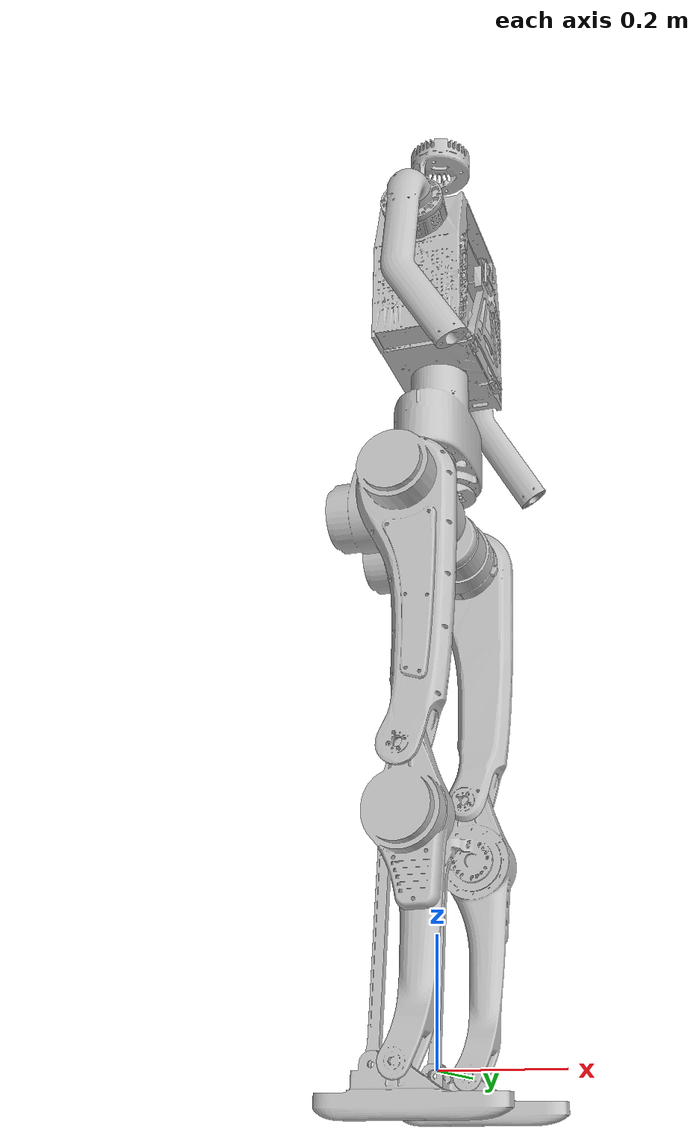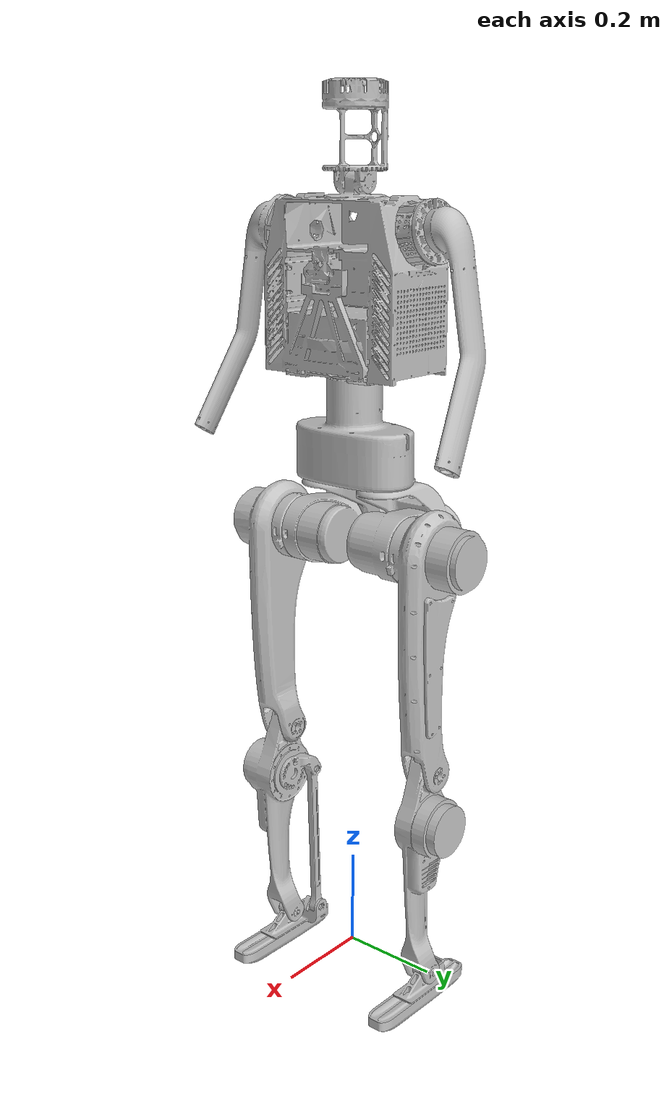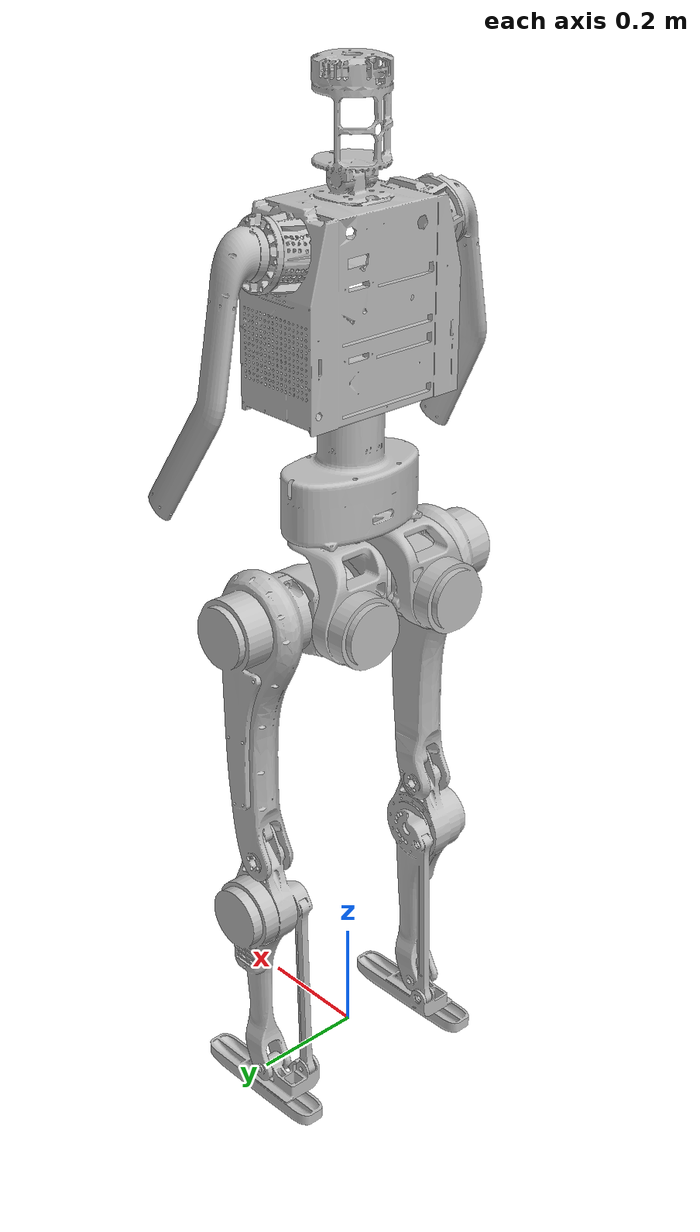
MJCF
<mujoco model="ultra_game_yaw">
  <compiler angle="radian" meshdir="../assets" eulerseq="zyx" autolimits="true"/>

  <default>
    <default class="ultra">
      <default class="visual">
        <geom group="2" type="mesh" density="0" material="body" contype="0" conaffinity="0"/>
      </default>
      <default class="collision">
        <geom group="3" rgba=".2 .6 .2 .3" type="cylinder" contype="1" conaffinity="1" condim="1"/>
        <default class="foot">
          <geom type="capsule" size="0.01" condim="3" friction="0.6 0.5 0.005" priority="1"/>
        </default>
      </default>
      <site group="5" rgba="1 0 0 1"/>
    </default>
  </default>

  <asset>
    <material name="body" rgba="0.752941 0.752941 0.752941 1"/>

    <mesh name="ankle_pitch_l_link" file="ankle_pitch_l_link_v9.STL"/>
    <mesh name="ankle_pitch_r_link" file="ankle_pitch_r_link_v9.STL"/>
    <mesh name="base_link" file="base_link.STL"/>
    <mesh name="hip_pitch_l_link" file="hip_pitch_l_link.STL"/>
    <mesh name="hip_pitch_r_link" file="hip_pitch_r_link.STL"/>
    <mesh name="hip_roll_l_link" file="hip_roll_l_link.STL"/>
    <mesh name="hip_roll_r_link" file="hip_roll_r_link.STL"/>
    <mesh name="hip_yaw_l_link" file="hip_yaw_l_link.STL"/>
    <mesh name="hip_yaw_r_link" file="hip_yaw_r_link.STL"/>
    <mesh name="knee_pitch_l_link" file="knee_pitch_l_link.STL"/>
    <mesh name="knee_pitch_r_link" file="knee_pitch_r_link.STL"/>
    <mesh name="shoulder_pitch_l_link" file="shoulder_pitch_l_link.STL"/>
    <mesh name="shoulder_pitch_r_link" file="shoulder_pitch_r_link.STL"/>
    <mesh name="waist_yaw_link" file="waist_yaw_link.STL"/>
  </asset>

  <worldbody>
    <body name="base_link" pos="0 0 1.23" childclass="ultra">
      <freejoint name="floating_base_joint"/>
      <site name="imu_in_base" size="0.01" pos="0 0 0"/>
      <inertial pos="-0.00105 0 -0.13823" mass="6.30030"
                fullinertia="0.05024 0.03127 0.03303 0 -0.00023 0"/>
      <geom class="visual" mesh="base_link"/>
      <geom name="base_collision" class="collision" type="sphere" size="0.05" pos="0 0 -0.08"/>

      <!-- Left leg -->
      <body name="hip_yaw_l_link" pos="0 0.07 -0.2135">
        <inertial pos="-0.10593 0.01716 -0.0943" quat="0.931073 0.062054 0.301882 -0.195243"
                  mass="4.17605" diaginertia="0.0172795 0.0167561 0.00993442"/>
        <joint name="hip_yaw_l_joint" axis="0 0 1" range="-0.436332 0.436332"
               actuatorfrcrange="-250 250" armature="0.048865"/>
        <geom class="visual" mesh="hip_yaw_l_link"/>
        <body name="hip_roll_l_link" pos="-0.0815 0.024 -0.115">
          <inertial pos="0.07397 -0.01706 0.00017" quat="0.580819 0.575652 0.401057 0.412829"
                    mass="4.09037" diaginertia="0.0131236 0.0118403 0.0101961"/>
          <joint name="hip_roll_l_joint" axis="1 0 0" range="-0.349066 0.523599"
                 actuatorfrcrange="-657 657" armature="0.40318"/>
          <geom class="visual" mesh="hip_roll_l_link"/>
          <body name="hip_pitch_l_link" pos="0.0815 0.024 0">
            <inertial pos="0.00427 0.08854 -0.07756" quat="0.972821 -0.0351176 -0.0279091 0.227174"
                      mass="8.24544" diaginertia="0.170371 0.168966 0.0227434"/>
            <joint name="hip_pitch_l_joint" axis="0 1 0" range="-2.79253 2.0944"
                   actuatorfrcrange="-657 657" armature="0.40318"/>
            <geom class="visual" mesh="hip_pitch_l_link"/>
            <geom name="hip_pitch_l_collision" class="collision" type="capsule" size="0.06 0.04" pos="0 0.029 -0.225"/>
            <body name="knee_pitch_l_link" pos="0 0.0705 -0.45">
              <inertial pos="0.010531 0.010036 -0.160398" quat="0.466522 -0.00304073 0.0430458 0.883456"
                        mass="5.23089" diaginertia="0.0802343 0.0773968 0.0115898"/>
              <joint name="knee_pitch_l_joint" axis="0 1 0" range="-0.0872665 2.44346"
                     actuatorfrcrange="-657 657" armature="0.40318"/>
              <geom class="visual" mesh="knee_pitch_l_link"/>
              <geom name="knee_pitch_l_collision" class="collision" type="capsule" size="0.05 0.05" pos="0 0 -0.225"/>
              <body name="ankle_pitch_l_link" pos="0 0 -0.45">
                <inertial pos="0.007487 -0.003298 -0.043773" quat="0.317134 0.632029 0.370816 0.602047"
                          mass="0.934211" diaginertia="0.0046141 0.0044328 0.000604104"/>
                <joint name="ankle_pitch_l_joint" axis="0 1 0" range="-1.22173 1.0472"
                       actuatorfrcrange="-400 400" armature="0.21448"/>
                <geom class="visual" mesh="ankle_pitch_l_link"/>
                <geom name="left_foot2_collision" class="foot" fromto="-0.09 -0.018 -0.055 0.125 -0.018 -0.055"/>
                <geom name="left_foot3_collision" class="foot" fromto="-0.09 -0.01 -0.065 0.125 -0.01 -0.065"/>
                <geom name="left_foot4_collision" class="foot" fromto="-0.09 0 -0.065 0.125 0 -0.065"/>
                <geom name="left_foot5_collision" class="foot" fromto="-0.09 0.01 -0.065 0.125 0.01 -0.065"/>
                <geom name="left_foot6_collision" class="foot" fromto="-0.09 0.018 -0.055 0.125 0.018 -0.055"/>
                <geom name="left_foot7_collision" class="foot" fromto="0.125 0.01 -0.06 0.15 0.01 -0.055"/>
                <geom name="left_foot8_collision" class="foot" fromto="0.125 -0.0 -0.06 0.15 -0.0 -0.055"/>
                <geom name="left_foot9_collision" class="foot" fromto="0.125 -0.01 -0.06 0.15 -0.01 -0.055"/>
                <geom name="left_foot10_collision" class="foot" fromto="-0.09 0.01 -0.06 -0.11 0.01 -0.055"/>
                <geom name="left_foot11_collision" class="foot" fromto="-0.09 -0.0 -0.06 -0.11 -0.0 -0.055"/>
                <geom name="left_foot12_collision" class="foot" fromto="-0.09 -0.01 -0.06 -0.11 -0.01 -0.055"/>
                <site name="left_foot" size="0.01" pos="0 0 -0.04"/>
              </body>
            </body>
          </body>
        </body>
      </body>

      <!-- Right leg -->
      <body name="hip_yaw_r_link" pos="0 -0.07 -0.2135">
        <inertial pos="-0.10593 -0.01716 -0.0943" quat="0.931073 -0.062054 0.301882 0.195243"
                  mass="4.17605" diaginertia="0.0172795 0.0167561 0.00993442"/>
        <joint name="hip_yaw_r_joint" axis="0 0 1" range="-0.436332 0.436332"
               actuatorfrcrange="-250 250" armature="0.048865"/>
        <geom class="visual" mesh="hip_yaw_r_link"/>
        <body name="hip_roll_r_link" pos="-0.0815 -0.024 -0.115">
          <inertial pos="0.07397 0.01706 0.00017" quat="0.412829 0.401057 0.575652 0.580819"
                    mass="4.09037" diaginertia="0.0131236 0.0118403 0.0101961"/>
          <joint name="hip_roll_r_joint" axis="1 0 0" range="-0.523599 0.349066"
                 actuatorfrcrange="-657 657" armature="0.40318"/>
          <geom class="visual" mesh="hip_roll_r_link"/>
          <body name="hip_pitch_r_link" pos="0.0815 -0.024 0">
            <inertial pos="0.00427 -0.08854 -0.07756" quat="0.972821 0.0351176 -0.0279091 -0.227174"
                      mass="8.24544" diaginertia="0.170371 0.168966 0.0227434"/>
            <joint name="hip_pitch_r_joint" axis="0 1 0" range="-2.79253 2.0944"
                   actuatorfrcrange="-657 657" armature="0.40318"/>
            <geom class="visual" mesh="hip_pitch_r_link"/>
            <geom name="hip_pitch_r_collision" class="collision" type="capsule" size="0.06 0.04" pos="0 -0.029 -0.225"/>
            <body name="knee_pitch_r_link" pos="0 -0.0705 -0.45">
              <inertial pos="0.010531 -0.010036 -0.160398" quat="0.883456 0.0430458 -0.00304073 0.466522"
                        mass="5.23089" diaginertia="0.0802343 0.0773968 0.0115898"/>
              <joint name="knee_pitch_r_joint" axis="0 1 0" range="-0.0872665 2.44346"
                     actuatorfrcrange="-657 657" armature="0.40318"/>
              <geom class="visual" mesh="knee_pitch_r_link"/>
              <geom name="knee_pitch_r_collision" class="collision" type="capsule" size="0.05 0.05" pos="0 0 -0.225"/>
              <body name="ankle_pitch_r_link" pos="0 0 -0.45">
                <inertial pos="0.007487 0.003298 -0.043773" quat="0.602047 0.370816 0.632029 0.317134"
                          mass="0.934211" diaginertia="0.0046141 0.0044328 0.000604104"/>
                <joint name="ankle_pitch_r_joint" axis="0 1 0" range="-1.22173 1.0472"
                       actuatorfrcrange="-400 400" armature="0.21448"/>
                <geom class="visual" mesh="ankle_pitch_r_link"/>
                <geom name="right_foot2_collision" class="foot" fromto="-0.09 -0.018 -0.055 0.125 -0.018 -0.055"/>
                <geom name="right_foot3_collision" class="foot" fromto="-0.09 -0.01 -0.065 0.125 -0.01 -0.065"/>
                <geom name="right_foot4_collision" class="foot" fromto="-0.09 0 -0.065 0.125 0 -0.065"/>
                <geom name="right_foot5_collision" class="foot" fromto="-0.09 0.01 -0.065 0.125 0.01 -0.065"/>
                <geom name="right_foot6_collision" class="foot" fromto="-0.09 0.018 -0.055 0.125 0.018 -0.055"/>
                <geom name="right_foot7_collision" class="foot" fromto="0.125 0.01 -0.06 0.15 0.01 -0.055"/>
                <geom name="right_foot8_collision" class="foot" fromto="0.125 -0.0 -0.06 0.15 -0.0 -0.055"/>
                <geom name="right_foot9_collision" class="foot" fromto="0.125 -0.01 -0.06 0.15 -0.01 -0.055"/>
                <geom name="right_foot10_collision" class="foot" fromto="-0.09 0.01 -0.06 -0.11 0.01 -0.055"/>
                <geom name="right_foot11_collision" class="foot" fromto="-0.09 -0.0 -0.06 -0.11 -0.0 -0.055"/>
                <geom name="right_foot12_collision" class="foot" fromto="-0.09 -0.01 -0.06 -0.11 -0.01 -0.055"/>
                <site name="right_foot" size="0.01" pos="0 0 -0.04"/>
              </body>
            </body>
          </body>
        </body>
      </body>

      <!-- Waist + arms -->
      <body name="waist_yaw_link">
        <inertial pos="0.00156 -0.001173 0.242753" quat="0.999785 -0.000564997 -0.0202735 0.00438609"
                  mass="15.6961" diaginertia="0.390472 0.291932 0.181409"/>
        <joint name="waist_yaw_joint" axis="0 0 1" range="-1.5708 1.5708"
               actuatorfrcrange="-250 250" armature="0.048865"/>
        <geom class="visual" mesh="waist_yaw_link"/>
        <geom name="waist_collision" class="collision" type="sphere" size="0.1" pos="0 0 0.16"/>
        <body name="shoulder_pitch_l_link" pos="0.00052293 0.1866 0.26789"
              quat="0.995247 0.0870717 0.00380173 -0.0434533">
          <inertial pos="0.070697 0.049271 -0.277004" mass="1.895842"
                    fullinertia="0.066849 0.072121 0.007156 -0.001084 0.018180 0.004462"/>
          <joint name="shoulder_pitch_l_joint" axis="0 1 0" range="-2.96706 2.96706"
                 actuatorfrcrange="-140 140" armature="0.041125"/>
          <geom class="visual" mesh="shoulder_pitch_l_link"/>
        </body>
        <body name="shoulder_pitch_r_link" pos="0.00052293 -0.1866 0.26789"
              quat="0.995247 -0.0870717 0.00380173 0.0434533">
          <inertial pos="0.070697 -0.049271 -0.277004" mass="1.895842"
                    fullinertia="0.066849 0.072121 0.007156 0.001084 0.018180 -0.004462"/>
          <joint name="shoulder_pitch_r_joint" axis="0 1 0" range="-2.96706 2.96706"
                 actuatorfrcrange="-140 140" armature="0.041125"/>
          <geom class="visual" mesh="shoulder_pitch_r_link"/>
        </body>
      </body>
    </body>
  </worldbody>

  <contact>
    <!-- Adjacent bodies: skip self-collision to keep solver happy. -->
    <exclude body1="base_link" body2="waist_yaw_link"/>
    <exclude body1="base_link" body2="hip_yaw_l_link"/>
    <exclude body1="base_link" body2="hip_yaw_r_link"/>
    <exclude body1="hip_yaw_l_link" body2="hip_roll_l_link"/>
    <exclude body1="hip_roll_l_link" body2="hip_pitch_l_link"/>
    <exclude body1="hip_pitch_l_link" body2="knee_pitch_l_link"/>
    <exclude body1="knee_pitch_l_link" body2="ankle_pitch_l_link"/>
    <exclude body1="hip_yaw_r_link" body2="hip_roll_r_link"/>
    <exclude body1="hip_roll_r_link" body2="hip_pitch_r_link"/>
    <exclude body1="hip_pitch_r_link" body2="knee_pitch_r_link"/>
    <exclude body1="knee_pitch_r_link" body2="ankle_pitch_r_link"/>
    <exclude body1="waist_yaw_link" body2="shoulder_pitch_l_link"/>
    <exclude body1="waist_yaw_link" body2="shoulder_pitch_r_link"/>
  </contact>

  <sensor>
    <gyro name="imu_ang_vel" site="imu_in_base"/>
    <velocimeter name="imu_lin_vel" site="imu_in_base"/>
    <accelerometer name="imu_lin_acc" site="imu_in_base"/>
    <framezaxis name="imu_upvector" objtype="body" objname="world" reftype="site" refname="imu_in_base"/>
    <subtreeangmom name="root_angmom" body="base_link"/>
  </sensor>
</mujoco>
